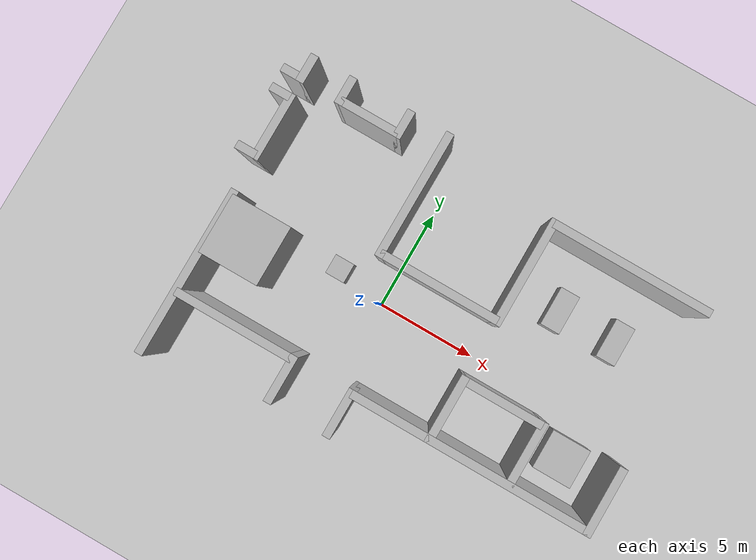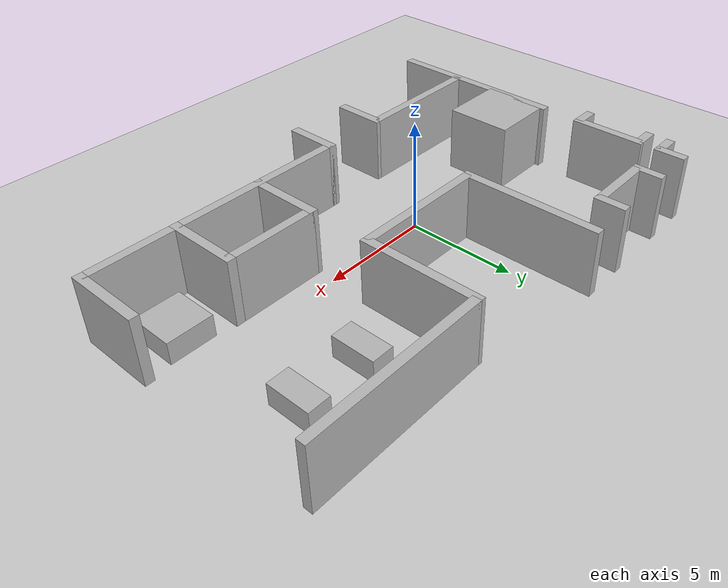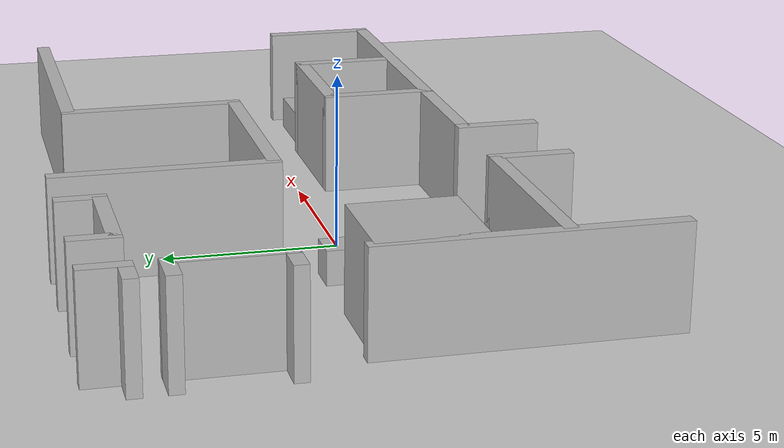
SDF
<?xml version="1.0" ?>
<sdf version="1.8">
  <world name="default">
    <!-- Geographic origin for GPS simulation — change to match your actual test site -->
    <spherical_coordinates>
      <surface_model>EARTH_WGS84</surface_model>
      <world_frame_orientation>ENU</world_frame_orientation>
      <latitude_deg>30.0444</latitude_deg>
      <longitude_deg>31.2357</longitude_deg>
      <elevation>74.0</elevation>
      <heading_deg>0</heading_deg>
    </spherical_coordinates>

    <physics name="1ms" type="bullet-featherstone">
      <max_step_size>0.001</max_step_size>
      <real_time_factor>1.0</real_time_factor>
    </physics>

    <!-- Plugins -->
    <plugin
      filename="gz-sim-physics-system"
      name="gz::sim::systems::Physics">
    </plugin>
    <plugin
      filename="gz-sim-sensors-system"
      name="gz::sim::systems::Sensors">
      <render_engine>ogre2</render_engine>
    </plugin>
    <plugin
      filename="gz-sim-user-commands-system"
      name="gz::sim::systems::UserCommands">
    </plugin>
    <plugin
      filename="gz-sim-scene-broadcaster-system"
      name="gz::sim::systems::SceneBroadcaster">
    </plugin>
    <plugin
      filename="gz-sim-navsat-system"
      name="gz::sim::systems::NavSat">
    </plugin>
    <plugin
      filename="gz-sim-contact-system"
      name="gz::sim::systems::Contact">
    </plugin>

    <!-- Lights -->
    <light type="directional" name="sun">
      <cast_shadows>true</cast_shadows>
      <pose>0 0 10 0 0 0</pose>
      <diffuse>0.8 0.8 0.8 1</diffuse>
      <specular>0.2 0.2 0.2 1</specular>
      <attenuation>
        <range>1000</range>
        <constant>0.9</constant>
        <linear>0.01</linear>
        <quadratic>0.001</quadratic>
      </attenuation>
      <direction>-0.5 0.1 -0.9</direction>
    </light>

    <!-- Ground Plane -->
    <model name="ground_plane">
      <static>true</static>
      <link name="link">
        <collision name="collision">
          <geometry>
            <plane>
              <normal>0 0 1</normal>
              <size>100 100</size>
            </plane>
          </geometry>
        </collision>
        <visual name="visual">
          <geometry>
            <plane>
              <normal>0 0 1</normal>
              <size>100 100</size>
            </plane>
          </geometry>
          <material>
            <ambient>0.8 0.8 0.8 1</ambient>
            <diffuse>0.8 0.8 0.8 1</diffuse>
            <specular>0.8 0.8 0.8 1</specular>
          </material>
        </visual>
      </link>
    </model>

    <model name="school_floor">
      <static>true</static>
      <link name="library_south">
        <pose>2.0 2.0 1.5 0 0 0</pose>
        <collision name="collision">
          <geometry>
            <box>
              <size>6 0.4 3.0</size>
            </box>
          </geometry>
        </collision>
        <visual name="visual">
          <geometry>
            <box>
              <size>6 0.4 3.0</size>
            </box>
          </geometry>
        </visual>
      </link>
      <link name="library_west">
        <pose>-1.0 5.0 1.5 0 0 0</pose>
        <collision name="collision">
          <geometry>
            <box>
              <size>0.4 6.4 3.0</size>
            </box>
          </geometry>
        </collision>
        <visual name="visual">
          <geometry>
            <box>
              <size>0.4 6.4 3.0</size>
            </box>
          </geometry>
        </visual>
      </link>
      <link name="library_east">
        <pose>5.0 4.5 1.5 0 0 0</pose>
        <collision name="collision">
          <geometry>
            <box>
              <size>0.4 5.4 3.0</size>
            </box>
          </geometry>
        </collision>
        <visual name="visual">
          <geometry>
            <box>
              <size>0.4 5.4 3.0</size>
            </box>
          </geometry>
        </visual>
      </link>
      <link name="northeast_wall">
        <pose>9.0 7.0 1.5 0 0 0</pose>
        <collision name="collision">
          <geometry>
            <box>
              <size>8 0.4 3.0</size>
            </box>
          </geometry>
        </collision>
        <visual name="visual">
          <geometry>
            <box>
              <size>8 0.4 3.0</size>
            </box>
          </geometry>
        </visual>
      </link>
      <link name="south_wall_left">
        <pose>-5.0 -4.0 1.5 0 0 0</pose>
        <collision name="collision">
          <geometry>
            <box>
              <size>6 0.4 3.0</size>
            </box>
          </geometry>
        </collision>
        <visual name="visual">
          <geometry>
            <box>
              <size>6 0.4 3.0</size>
            </box>
          </geometry>
        </visual>
      </link>
      <link name="south_wall_right">
        <pose>7.0 -4.0 1.5 0 0 0</pose>
        <collision name="collision">
          <geometry>
            <box>
              <size>12 0.4 3.0</size>
            </box>
          </geometry>
        </collision>
        <visual name="visual">
          <geometry>
            <box>
              <size>12 0.4 3.0</size>
            </box>
          </geometry>
        </visual>
      </link>
      <link name="west_wall_long">
        <pose>-8.0 -3.0 1.5 0 0 0</pose>
        <collision name="collision">
          <geometry>
            <box>
              <size>0.4 8.4 3.0</size>
            </box>
          </geometry>
        </collision>
        <visual name="visual">
          <geometry>
            <box>
              <size>0.4 8.4 3.0</size>
            </box>
          </geometry>
        </visual>
      </link>
      <link name="west_wall_upper">
        <pose>-8.0 4.5 1.5 0 0 0</pose>
        <collision name="collision">
          <geometry>
            <box>
              <size>0.4 3.4 3.0</size>
            </box>
          </geometry>
        </collision>
        <visual name="visual">
          <geometry>
            <box>
              <size>0.4 3.4 3.0</size>
            </box>
          </geometry>
        </visual>
      </link>
      <link name="west_wall_top_stub">
        <pose>-8.0 7.5 1.5 0 0 0</pose>
        <collision name="collision">
          <geometry>
            <box>
              <size>0.4 1.4 3.0</size>
            </box>
          </geometry>
        </collision>
        <visual name="visual">
          <geometry>
            <box>
              <size>0.4 1.4 3.0</size>
            </box>
          </geometry>
        </visual>
      </link>
      <link name="west_room_south_stub">
        <pose>-8.5 7.0 1.5 0 0 0</pose>
        <collision name="collision">
          <geometry>
            <box>
              <size>1 0.4 3.0</size>
            </box>
          </geometry>
        </collision>
        <visual name="visual">
          <geometry>
            <box>
              <size>1 0.4 3.0</size>
            </box>
          </geometry>
        </visual>
      </link>
      <link name="west_room_north_stub">
        <pose>-8.5 6.0 1.5 0 0 0</pose>
        <collision name="collision">
          <geometry>
            <box>
              <size>1 0.4 3.0</size>
            </box>
          </geometry>
        </collision>
        <visual name="visual">
          <geometry>
            <box>
              <size>1 0.4 3.0</size>
            </box>
          </geometry>
        </visual>
      </link>
      <link name="west_room_lower_stub">
        <pose>-8.5 3.0 1.5 0 0 0</pose>
        <collision name="collision">
          <geometry>
            <box>
              <size>1 0.4 3.0</size>
            </box>
          </geometry>
        </collision>
        <visual name="visual">
          <geometry>
            <box>
              <size>1 0.4 3.0</size>
            </box>
          </geometry>
        </visual>
      </link>
      <link name="north_room_south">
        <pose>-4.5 7.0 1.5 0 0 0</pose>
        <collision name="collision">
          <geometry>
            <box>
              <size>3 0.4 3.0</size>
            </box>
          </geometry>
        </collision>
        <visual name="visual">
          <geometry>
            <box>
              <size>3 0.4 3.0</size>
            </box>
          </geometry>
        </visual>
      </link>
      <link name="north_room_west">
        <pose>-6.0 7.5 1.5 0 0 0</pose>
        <collision name="collision">
          <geometry>
            <box>
              <size>0.4 1.4 3.0</size>
            </box>
          </geometry>
        </collision>
        <visual name="visual">
          <geometry>
            <box>
              <size>0.4 1.4 3.0</size>
            </box>
          </geometry>
        </visual>
      </link>
      <link name="north_room_east">
        <pose>-3.0 7.5 1.5 0 0 0</pose>
        <collision name="collision">
          <geometry>
            <box>
              <size>0.4 1.4 3.0</size>
            </box>
          </geometry>
        </collision>
        <visual name="visual">
          <geometry>
            <box>
              <size>0.4 1.4 3.0</size>
            </box>
          </geometry>
        </visual>
      </link>
      <link name="closed_room_north">
        <pose>7.0 -1.0 1.5 0 0 0</pose>
        <collision name="collision">
          <geometry>
            <box>
              <size>4 0.4 3.0</size>
            </box>
          </geometry>
        </collision>
        <visual name="visual">
          <geometry>
            <box>
              <size>4 0.4 3.0</size>
            </box>
          </geometry>
        </visual>
      </link>
      <link name="closed_room_west">
        <pose>5.0 -2.5 1.5 0 0 0</pose>
        <collision name="collision">
          <geometry>
            <box>
              <size>0.4 3.4 3.0</size>
            </box>
          </geometry>
        </collision>
        <visual name="visual">
          <geometry>
            <box>
              <size>0.4 3.4 3.0</size>
            </box>
          </geometry>
        </visual>
      </link>
      <link name="closed_room_east">
        <pose>9.0 -2.5 1.5 0 0 0</pose>
        <collision name="collision">
          <geometry>
            <box>
              <size>0.4 3.4 3.0</size>
            </box>
          </geometry>
        </collision>
        <visual name="visual">
          <geometry>
            <box>
              <size>0.4 3.4 3.0</size>
            </box>
          </geometry>
        </visual>
      </link>
      <link name="east_wall">
        <pose>13.0 -2.5 1.5 0 0 0</pose>
        <collision name="collision">
          <geometry>
            <box>
              <size>0.4 3.4 3.0</size>
            </box>
          </geometry>
        </collision>
        <visual name="visual">
          <geometry>
            <box>
              <size>0.4 3.4 3.0</size>
            </box>
          </geometry>
        </visual>
      </link>
      <link name="entrance_west">
        <pose>-2.0 -5.0 1.5 0 0 0</pose>
        <collision name="collision">
          <geometry>
            <box>
              <size>0.4 2.4 3.0</size>
            </box>
          </geometry>
        </collision>
        <visual name="visual">
          <geometry>
            <box>
              <size>0.4 2.4 3.0</size>
            </box>
          </geometry>
        </visual>
      </link>
      <link name="entrance_east">
        <pose>1.0 -5.0 1.5 0 0 0</pose>
        <collision name="collision">
          <geometry>
            <box>
              <size>0.4 2.4 3.0</size>
            </box>
          </geometry>
        </collision>
        <visual name="visual">
          <geometry>
            <box>
              <size>0.4 2.4 3.0</size>
            </box>
          </geometry>
        </visual>
      </link>
      <link name="staircase_block">
        <pose>-6.5 -0.5 1.5 0 0 0</pose>
        <collision name="collision">
          <geometry>
            <box>
              <size>3 3 3.0</size>
            </box>
          </geometry>
        </collision>
        <visual name="visual">
          <geometry>
            <box>
              <size>3 3 3.0</size>
            </box>
          </geometry>
        </visual>
      </link>
      <link name="pillar_small">
        <pose>-2.5 0.5 0.5 0 0 0</pose>
        <collision name="collision">
          <geometry>
            <box>
              <size>1 1 1.0</size>
            </box>
          </geometry>
        </collision>
        <visual name="visual">
          <geometry>
            <box>
              <size>1 1 1.0</size>
            </box>
          </geometry>
        </visual>
      </link>
      <link name="obstacle_upper_left">
        <pose>7.5 4.0 0.5 0 0 0</pose>
        <collision name="collision">
          <geometry>
            <box>
              <size>1 2 1.0</size>
            </box>
          </geometry>
        </collision>
        <visual name="visual">
          <geometry>
            <box>
              <size>1 2 1.0</size>
            </box>
          </geometry>
        </visual>
      </link>
      <link name="obstacle_upper_right">
        <pose>10.5 4.0 0.5 0 0 0</pose>
        <collision name="collision">
          <geometry>
            <box>
              <size>1 2 1.0</size>
            </box>
          </geometry>
        </collision>
        <visual name="visual">
          <geometry>
            <box>
              <size>1 2 1.0</size>
            </box>
          </geometry>
        </visual>
      </link>
      <link name="obstacle_square">
        <pose>11.0 -2.0 0.5 0 0 0</pose>
        <collision name="collision">
          <geometry>
            <box>
              <size>2 2 1.0</size>
            </box>
          </geometry>
        </collision>
        <visual name="visual">
          <geometry>
            <box>
              <size>2 2 1.0</size>
            </box>
          </geometry>
        </visual>
      </link>
    </model>

  </world>
</sdf>
